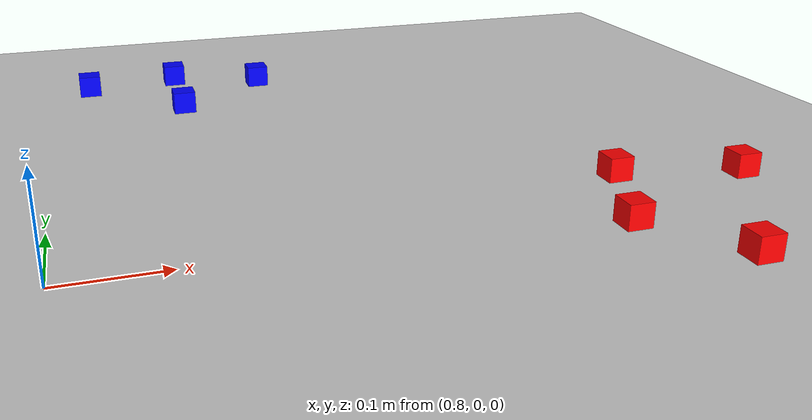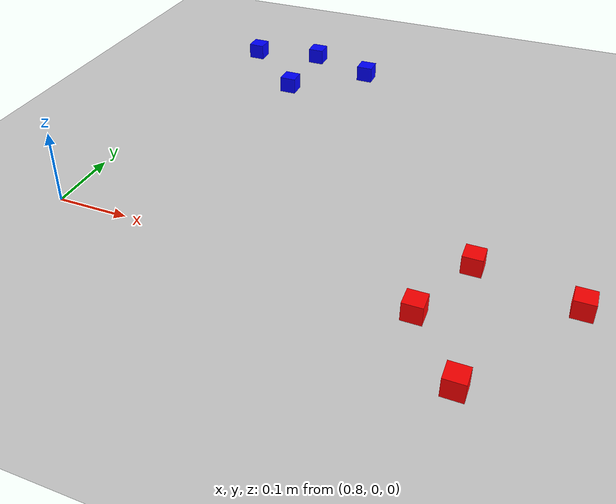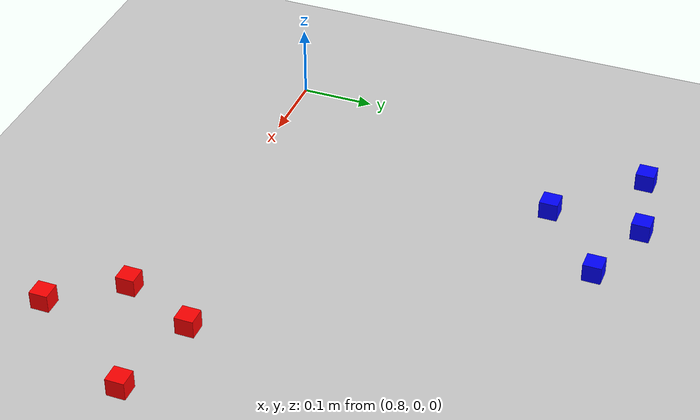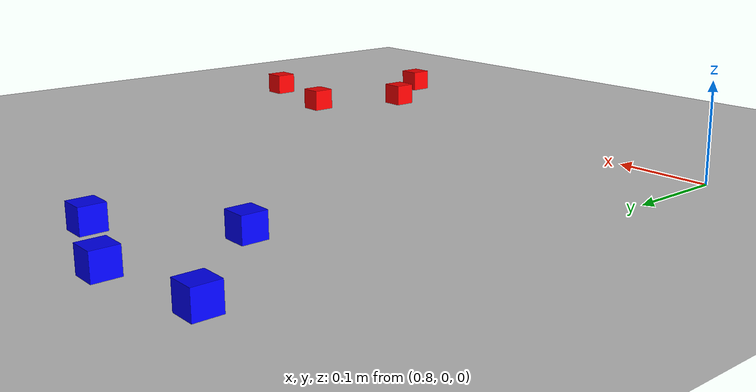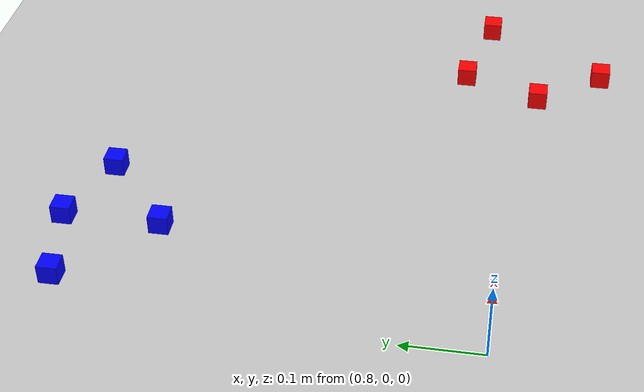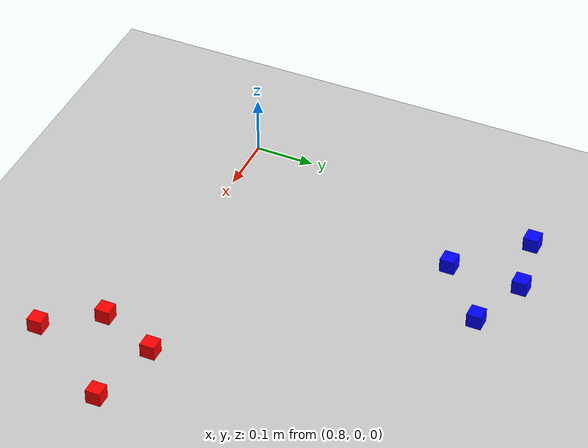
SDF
<sdf version="1.7">
 <world name="default">
  <model name="ground_plane">
   <static>1</static>
   <link name="link">
    <collision name="collision">
     <geometry><plane><normal>0 0 1</normal><size>100 100</size></plane></geometry>
     <surface>
      <contact><collide_bitmask>65535</collide_bitmask></contact>
      <friction><ode><mu>100</mu><mu2>50</mu2></ode></friction>
     </surface>
    </collision>
    <visual name="visual">
     <cast_shadows>0</cast_shadows>
     <geometry><plane><normal>0 0 1</normal><size>100 100</size></plane></geometry>
     <material>
      <script><uri>file://media/materials/scripts/gazebo.material</uri><name>Gazebo/Grey</name></script>
     </material>
    </visual>
   </link>
  </model>
  <model name="red_unit_box">
   <link name="link">
    <inertial>
     <mass>1</mass>
     <inertia>
      <ixx>0.166667</ixx>
      <ixy>0</ixy>
      <ixz>0</ixz>
      <iyy>0.166667</iyy>
      <iyz>0</iyz>
      <izz>0.166667</izz>
     </inertia>
    </inertial>
    <visual name="visual">
     <geometry><box><size>0.025 0.025 0.025</size></box></geometry>
     <material>
      <script><name>Gazebo/Grey</name><uri>file://media/materials/scripts/gazebo.material</uri></script>
      <shader type="pixel"><normal_map>__default__</normal_map></shader>
      <ambient>0.7 0 0 1</ambient>
      <diffuse>1 0 0 1</diffuse>
      <specular>0.01 0 0 1</specular>
      <emissive>0 0 0 1</emissive>
     </material>
    </visual>
    <collision name="collision">
     <geometry><box><size>0.025 0.025 0.025</size></box></geometry>
     <surface>
      <friction>
       <ode><mu>1</mu><mu2>1</mu2><fdir1>0 0 0</fdir1><slip1>0</slip1><slip2>0</slip2></ode>
       <torsional>
        <coefficient>1</coefficient>
        <patch_radius>0</patch_radius>
        <surface_radius>0</surface_radius>
        <use_patch_radius>1</use_patch_radius>
        <ode><slip>0</slip></ode>
       </torsional>
      </friction>
      <bounce><restitution_coefficient>0</restitution_coefficient><threshold>1e+06</threshold></bounce>
      <contact>
       <collide_without_contact>0</collide_without_contact>
       <collide_without_contact_bitmask>1</collide_without_contact_bitmask>
       <collide_bitmask>1</collide_bitmask>
       <ode>
        <soft_cfm>0</soft_cfm>
        <soft_erp>0.2</soft_erp>
        <kp>1e+13</kp>
        <kd>1</kd>
        <max_vel>0.01</max_vel>
        <min_depth>0</min_depth>
       </ode>
       <bullet>
        <split_impulse>1</split_impulse>
        <split_impulse_penetration_threshold>-0.01</split_impulse_penetration_threshold>
        <soft_cfm>0</soft_cfm>
        <soft_erp>0.2</soft_erp>
        <kp>1e+13</kp>
        <kd>1</kd>
       </bullet>
      </contact>
     </surface>
    </collision>
   </link>
   <static>0</static>
   <pose>1.33237 0.064773 0.012526 2.2e-05 -0.00202 -0.000839</pose>
  </model>
  <model name="red_unit_box_clone">
   <link name="link">
    <inertial>
     <mass>1</mass>
     <inertia>
      <ixx>0.166667</ixx>
      <ixy>0</ixy>
      <ixz>0</ixz>
      <iyy>0.166667</iyy>
      <iyz>0</iyz>
      <izz>0.166667</izz>
     </inertia>
    </inertial>
    <visual name="visual">
     <geometry><box><size>0.025 0.025 0.025</size></box></geometry>
     <material>
      <script><name>Gazebo/Grey</name><uri>file://media/materials/scripts/gazebo.material</uri></script>
      <shader type="pixel"><normal_map>__default__</normal_map></shader>
      <ambient>0.7 0 0 1</ambient>
      <diffuse>1 0 0 1</diffuse>
      <specular>0.01 0 0 1</specular>
      <emissive>0 0 0 1</emissive>
     </material>
    </visual>
    <collision name="collision">
     <geometry><box><size>0.025 0.025 0.025</size></box></geometry>
     <surface>
      <friction>
       <ode><mu>1</mu><mu2>1</mu2><fdir1>0 0 0</fdir1><slip1>0</slip1><slip2>0</slip2></ode>
       <torsional>
        <coefficient>1</coefficient>
        <patch_radius>0</patch_radius>
        <surface_radius>0</surface_radius>
        <use_patch_radius>1</use_patch_radius>
        <ode><slip>0</slip></ode>
       </torsional>
      </friction>
      <bounce><restitution_coefficient>0</restitution_coefficient><threshold>1e+06</threshold></bounce>
      <contact>
       <collide_without_contact>0</collide_without_contact>
       <collide_without_contact_bitmask>1</collide_without_contact_bitmask>
       <collide_bitmask>1</collide_bitmask>
       <ode>
        <soft_cfm>0</soft_cfm>
        <soft_erp>0.2</soft_erp>
        <kp>1e+13</kp>
        <kd>1</kd>
        <max_vel>0.01</max_vel>
        <min_depth>0</min_depth>
       </ode>
       <bullet>
        <split_impulse>1</split_impulse>
        <split_impulse_penetration_threshold>-0.01</split_impulse_penetration_threshold>
        <soft_cfm>0</soft_cfm>
        <soft_erp>0.2</soft_erp>
        <kp>1e+13</kp>
        <kd>1</kd>
       </bullet>
      </contact>
     </surface>
    </collision>
   </link>
   <static>0</static>
   <pose>1.28951 -0.036245 0.012503 1.5e-05 -0.000983 -0.000828</pose>
  </model>
  <model name="red_unit_box_clone_0">
   <link name="link">
    <inertial>
     <mass>1</mass>
     <inertia>
      <ixx>0.166667</ixx>
      <ixy>0</ixy>
      <ixz>0</ixz>
      <iyy>0.166667</iyy>
      <iyz>0</iyz>
      <izz>0.166667</izz>
     </inertia>
    </inertial>
    <visual name="visual">
     <geometry><box><size>0.025 0.025 0.025</size></box></geometry>
     <material>
      <script><name>Gazebo/Grey</name><uri>file://media/materials/scripts/gazebo.material</uri></script>
      <shader type="pixel"><normal_map>__default__</normal_map></shader>
      <ambient>0.7 0 0 1</ambient>
      <diffuse>1 0 0 1</diffuse>
      <specular>0.01 0 0 1</specular>
      <emissive>0 0 0 1</emissive>
     </material>
    </visual>
    <collision name="collision">
     <geometry><box><size>0.025 0.025 0.025</size></box></geometry>
     <surface>
      <friction>
       <ode><mu>1</mu><mu2>1</mu2><fdir1>0 0 0</fdir1><slip1>0</slip1><slip2>0</slip2></ode>
       <torsional>
        <coefficient>1</coefficient>
        <patch_radius>0</patch_radius>
        <surface_radius>0</surface_radius>
        <use_patch_radius>1</use_patch_radius>
        <ode><slip>0</slip></ode>
       </torsional>
      </friction>
      <bounce><restitution_coefficient>0</restitution_coefficient><threshold>1e+06</threshold></bounce>
      <contact>
       <collide_without_contact>0</collide_without_contact>
       <collide_without_contact_bitmask>1</collide_without_contact_bitmask>
       <collide_bitmask>1</collide_bitmask>
       <ode>
        <soft_cfm>0</soft_cfm>
        <soft_erp>0.2</soft_erp>
        <kp>1e+13</kp>
        <kd>1</kd>
        <max_vel>0.01</max_vel>
        <min_depth>0</min_depth>
       </ode>
       <bullet>
        <split_impulse>1</split_impulse>
        <split_impulse_penetration_threshold>-0.01</split_impulse_penetration_threshold>
        <soft_cfm>0</soft_cfm>
        <soft_erp>0.2</soft_erp>
        <kp>1e+13</kp>
        <kd>1</kd>
       </bullet>
      </contact>
     </surface>
    </collision>
   </link>
   <static>0</static>
   <pose>1.45792 0.036538 0.012513 1.4e-05 0.001035 -0.000847</pose>
  </model>
  <model name="red_unit_box_clone_1">
   <link name="link">
    <inertial>
     <mass>1</mass>
     <inertia>
      <ixx>0.166667</ixx>
      <ixy>0</ixy>
      <ixz>0</ixz>
      <iyy>0.166667</iyy>
      <iyz>0</iyz>
      <izz>0.166667</izz>
     </inertia>
    </inertial>
    <visual name="visual">
     <geometry><box><size>0.025 0.025 0.025</size></box></geometry>
     <material>
      <script><name>Gazebo/Grey</name><uri>file://media/materials/scripts/gazebo.material</uri></script>
      <shader type="pixel"><normal_map>__default__</normal_map></shader>
      <ambient>0.7 0 0 1</ambient>
      <diffuse>1 0 0 1</diffuse>
      <specular>0.01 0 0 1</specular>
      <emissive>0 0 0 1</emissive>
     </material>
    </visual>
    <collision name="collision">
     <geometry><box><size>0.025 0.025 0.025</size></box></geometry>
     <surface>
      <friction>
       <ode><mu>1</mu><mu2>1</mu2><fdir1>0 0 0</fdir1><slip1>0</slip1><slip2>0</slip2></ode>
       <torsional>
        <coefficient>1</coefficient>
        <patch_radius>0</patch_radius>
        <surface_radius>0</surface_radius>
        <use_patch_radius>1</use_patch_radius>
        <ode><slip>0</slip></ode>
       </torsional>
      </friction>
      <bounce><restitution_coefficient>0</restitution_coefficient><threshold>1e+06</threshold></bounce>
      <contact>
       <collide_without_contact>0</collide_without_contact>
       <collide_without_contact_bitmask>1</collide_without_contact_bitmask>
       <collide_bitmask>1</collide_bitmask>
       <ode>
        <soft_cfm>0</soft_cfm>
        <soft_erp>0.2</soft_erp>
        <kp>1e+13</kp>
        <kd>1</kd>
        <max_vel>0.01</max_vel>
        <min_depth>0</min_depth>
       </ode>
       <bullet>
        <split_impulse>1</split_impulse>
        <split_impulse_penetration_threshold>-0.01</split_impulse_penetration_threshold>
        <soft_cfm>0</soft_cfm>
        <soft_erp>0.2</soft_erp>
        <kp>1e+13</kp>
        <kd>1</kd>
       </bullet>
      </contact>
     </surface>
    </collision>
   </link>
   <static>0</static>
   <pose>1.3537 -0.121946 0.012535 3e-06 0.002799 -0.000848</pose>
  </model>
  <model name="blue_unit_box">
   <link name="link">
    <inertial>
     <mass>1</mass>
     <inertia>
      <ixx>0.166667</ixx>
      <ixy>0</ixy>
      <ixz>0</ixz>
      <iyy>0.166667</iyy>
      <iyz>0</iyz>
      <izz>0.166667</izz>
     </inertia>
    </inertial>
    <visual name="visual">
     <geometry><box><size>0.025 0.025 0.025</size></box></geometry>
     <material>
      <script><name>Gazebo/Grey</name><uri>file://media/materials/scripts/gazebo.material</uri></script>
      <shader type="pixel"><normal_map>__default__</normal_map></shader>
      <ambient>0 0 1 1</ambient>
      <diffuse>0 0 1 1</diffuse>
      <specular>0.01 0 0 1</specular>
      <emissive>0 0 0 1</emissive>
     </material>
    </visual>
    <collision name="collision">
     <geometry><box><size>0.025 0.025 0.025</size></box></geometry>
     <surface>
      <friction>
       <ode><mu>1</mu><mu2>1</mu2><fdir1>0 0 0</fdir1><slip1>0</slip1><slip2>0</slip2></ode>
       <torsional>
        <coefficient>1</coefficient>
        <patch_radius>0</patch_radius>
        <surface_radius>0</surface_radius>
        <use_patch_radius>1</use_patch_radius>
        <ode><slip>0</slip></ode>
       </torsional>
      </friction>
      <bounce><restitution_coefficient>0</restitution_coefficient><threshold>1e+06</threshold></bounce>
      <contact>
       <collide_without_contact>0</collide_without_contact>
       <collide_without_contact_bitmask>1</collide_without_contact_bitmask>
       <collide_bitmask>1</collide_bitmask>
       <ode>
        <soft_cfm>0</soft_cfm>
        <soft_erp>0.2</soft_erp>
        <kp>1e+13</kp>
        <kd>1</kd>
        <max_vel>0.01</max_vel>
        <min_depth>0</min_depth>
       </ode>
       <bullet>
        <split_impulse>1</split_impulse>
        <split_impulse_penetration_threshold>-0.01</split_impulse_penetration_threshold>
        <soft_cfm>0</soft_cfm>
        <soft_erp>0.2</soft_erp>
        <kp>1e+13</kp>
        <kd>1</kd>
       </bullet>
      </contact>
     </surface>
    </collision>
   </link>
   <static>0</static>
   <pose>0.954529 0.411618 0.012501 -1e-06 -0.000114 -0.000837</pose>
  </model>
  <model name="blue_unit_box_clone">
   <link name="link">
    <inertial>
     <mass>1</mass>
     <inertia>
      <ixx>0.166667</ixx>
      <ixy>0</ixy>
      <ixz>0</ixz>
      <iyy>0.166667</iyy>
      <iyz>0</iyz>
      <izz>0.166667</izz>
     </inertia>
    </inertial>
    <visual name="visual">
     <geometry><box><size>0.025 0.025 0.025</size></box></geometry>
     <material>
      <script><name>Gazebo/Grey</name><uri>file://media/materials/scripts/gazebo.material</uri></script>
      <shader type="pixel"><normal_map>__default__</normal_map></shader>
      <ambient>0 0 1 1</ambient>
      <diffuse>0 0 1 1</diffuse>
      <specular>0.01 0 0 1</specular>
      <emissive>0 0 0 1</emissive>
     </material>
    </visual>
    <collision name="collision">
     <geometry><box><size>0.025 0.025 0.025</size></box></geometry>
     <surface>
      <friction>
       <ode><mu>1</mu><mu2>1</mu2><fdir1>0 0 0</fdir1><slip1>0</slip1><slip2>0</slip2></ode>
       <torsional>
        <coefficient>1</coefficient>
        <patch_radius>0</patch_radius>
        <surface_radius>0</surface_radius>
        <use_patch_radius>1</use_patch_radius>
        <ode><slip>0</slip></ode>
       </torsional>
      </friction>
      <bounce><restitution_coefficient>0</restitution_coefficient><threshold>1e+06</threshold></bounce>
      <contact>
       <collide_without_contact>0</collide_without_contact>
       <collide_without_contact_bitmask>1</collide_without_contact_bitmask>
       <collide_bitmask>1</collide_bitmask>
       <ode>
        <soft_cfm>0</soft_cfm>
        <soft_erp>0.2</soft_erp>
        <kp>1e+13</kp>
        <kd>1</kd>
        <max_vel>0.01</max_vel>
        <min_depth>0</min_depth>
       </ode>
       <bullet>
        <split_impulse>1</split_impulse>
        <split_impulse_penetration_threshold>-0.01</split_impulse_penetration_threshold>
        <soft_cfm>0</soft_cfm>
        <soft_erp>0.2</soft_erp>
        <kp>1e+13</kp>
        <kd>1</kd>
       </bullet>
      </contact>
     </surface>
    </collision>
   </link>
   <static>0</static>
   <pose>0.849399 0.515107 0.012501 -1e-06 -0.000114 -0.000837</pose>
  </model>
  <model name="blue_unit_box_clone_0">
   <link name="link">
    <inertial>
     <mass>1</mass>
     <inertia>
      <ixx>0.166667</ixx>
      <ixy>0</ixy>
      <ixz>0</ixz>
      <iyy>0.166667</iyy>
      <iyz>0</iyz>
      <izz>0.166667</izz>
     </inertia>
    </inertial>
    <visual name="visual">
     <geometry><box><size>0.025 0.025 0.025</size></box></geometry>
     <material>
      <script><name>Gazebo/Grey</name><uri>file://media/materials/scripts/gazebo.material</uri></script>
      <shader type="pixel"><normal_map>__default__</normal_map></shader>
      <ambient>0 0 1 1</ambient>
      <diffuse>0 0 1 1</diffuse>
      <specular>0.01 0 0 1</specular>
      <emissive>0 0 0 1</emissive>
     </material>
    </visual>
    <collision name="collision">
     <geometry><box><size>0.025 0.025 0.025</size></box></geometry>
     <surface>
      <friction>
       <ode><mu>1</mu><mu2>1</mu2><fdir1>0 0 0</fdir1><slip1>0</slip1><slip2>0</slip2></ode>
       <torsional>
        <coefficient>1</coefficient>
        <patch_radius>0</patch_radius>
        <surface_radius>0</surface_radius>
        <use_patch_radius>1</use_patch_radius>
        <ode><slip>0</slip></ode>
       </torsional>
      </friction>
      <bounce><restitution_coefficient>0</restitution_coefficient><threshold>1e+06</threshold></bounce>
      <contact>
       <collide_without_contact>0</collide_without_contact>
       <collide_without_contact_bitmask>1</collide_without_contact_bitmask>
       <collide_bitmask>1</collide_bitmask>
       <ode>
        <soft_cfm>0</soft_cfm>
        <soft_erp>0.2</soft_erp>
        <kp>1e+13</kp>
        <kd>1</kd>
        <max_vel>0.01</max_vel>
        <min_depth>0</min_depth>
       </ode>
       <bullet>
        <split_impulse>1</split_impulse>
        <split_impulse_penetration_threshold>-0.01</split_impulse_penetration_threshold>
        <soft_cfm>0</soft_cfm>
        <soft_erp>0.2</soft_erp>
        <kp>1e+13</kp>
        <kd>1</kd>
       </bullet>
      </contact>
     </surface>
    </collision>
   </link>
   <static>0</static>
   <pose>0.955886 0.53522 0.012501 -1e-06 -0.000114 -0.000837</pose>
  </model>
  <model name="blue_unit_box_clone_1">
   <link name="link">
    <inertial>
     <mass>1</mass>
     <inertia>
      <ixx>0.166667</ixx>
      <ixy>0</ixy>
      <ixz>0</ixz>
      <iyy>0.166667</iyy>
      <iyz>0</iyz>
      <izz>0.166667</izz>
     </inertia>
    </inertial>
    <visual name="visual">
     <geometry><box><size>0.025 0.025 0.025</size></box></geometry>
     <material>
      <script><name>Gazebo/Grey</name><uri>file://media/materials/scripts/gazebo.material</uri></script>
      <shader type="pixel"><normal_map>__default__</normal_map></shader>
      <ambient>0 0 1 1</ambient>
      <diffuse>0 0 1 1</diffuse>
      <specular>0.01 0 0 1</specular>
      <emissive>0 0 0 1</emissive>
     </material>
    </visual>
    <collision name="collision">
     <geometry><box><size>0.025 0.025 0.025</size></box></geometry>
     <surface>
      <friction>
       <ode><mu>1</mu><mu2>1</mu2><fdir1>0 0 0</fdir1><slip1>0</slip1><slip2>0</slip2></ode>
       <torsional>
        <coefficient>1</coefficient>
        <patch_radius>0</patch_radius>
        <surface_radius>0</surface_radius>
        <use_patch_radius>1</use_patch_radius>
        <ode><slip>0</slip></ode>
       </torsional>
      </friction>
      <bounce><restitution_coefficient>0</restitution_coefficient><threshold>1e+06</threshold></bounce>
      <contact>
       <collide_without_contact>0</collide_without_contact>
       <collide_without_contact_bitmask>1</collide_without_contact_bitmask>
       <collide_bitmask>1</collide_bitmask>
       <ode>
        <soft_cfm>0</soft_cfm>
        <soft_erp>0.2</soft_erp>
        <kp>1e+13</kp>
        <kd>1</kd>
        <max_vel>0.01</max_vel>
        <min_depth>0</min_depth>
       </ode>
       <bullet>
        <split_impulse>1</split_impulse>
        <split_impulse_penetration_threshold>-0.01</split_impulse_penetration_threshold>
        <soft_cfm>0</soft_cfm>
        <soft_erp>0.2</soft_erp>
        <kp>1e+13</kp>
        <kd>1</kd>
       </bullet>
      </contact>
     </surface>
    </collision>
   </link>
   <static>0</static>
   <pose>1.05877 0.498398 0.012501 -1e-06 -0.000114 -0.000837</pose>
  </model>
 </world>
</sdf>
